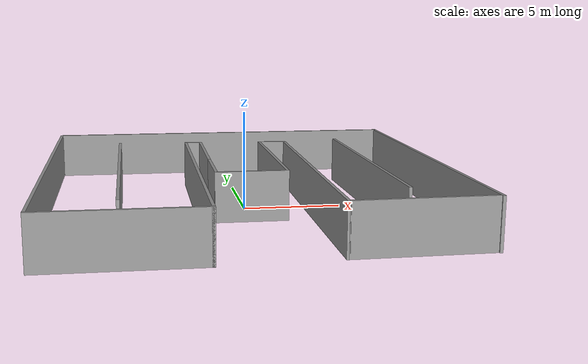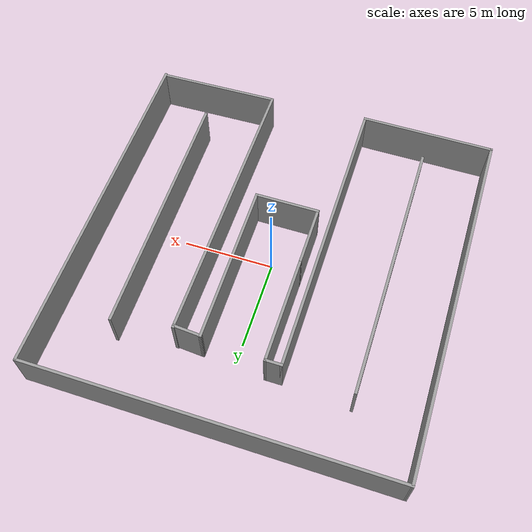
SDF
<?xml version='1.0'?>
<sdf version='1.7'>
  <model name='labirinto'>
    <pose>-0.019248 0.178923 0 0 -0 0</pose>
    <link name='Wall_1'>
      <collision name='Wall_1_Collision'>
        <geometry>
          <box>
            <size>3.5 0.15 2.5</size>
          </box>
        </geometry>
        <pose>0 0 1.25 0 -0 0</pose>
      </collision>
      <visual name='Wall_1_Visual'>
        <pose>0 0 1.25 0 -0 0</pose>
        <geometry>
          <box>
            <size>3.5 0.15 2.5</size>
          </box>
        </geometry>
        <material>
          <script>
            <uri>file://media/materials/scripts/gazebo.material</uri>
            <name>Gazebo/Grey</name>
          </script>
          <ambient>1 1 1 1</ambient>
        </material>
        <meta>
          <layer>0</layer>
        </meta>
      </visual>
      <pose>-1.71705 -1.19661 0 0 -0 -1.5708</pose>
    </link>
    <link name='Wall_10'>
      <collision name='Wall_10_Collision'>
        <geometry>
          <box>
            <size>7.5 0.15 2.5</size>
          </box>
        </geometry>
        <pose>0 0 1.25 0 -0 0</pose>
      </collision>
      <visual name='Wall_10_Visual'>
        <pose>0 0 1.25 0 -0 0</pose>
        <geometry>
          <box>
            <size>7.5 0.15 2.5</size>
          </box>
        </geometry>
        <material>
          <script>
            <uri>file://media/materials/scripts/gazebo.material</uri>
            <name>Gazebo/Grey</name>
          </script>
          <ambient>1 1 1 1</ambient>
        </material>
        <meta>
          <layer>0</layer>
        </meta>
      </visual>
      <pose>-6.21753 -9.92512 0 0 -0 0</pose>
    </link>
    <link name='Wall_11'>
      <collision name='Wall_11_Collision'>
        <geometry>
          <box>
            <size>16.25 0.15 2.5</size>
          </box>
        </geometry>
        <pose>0 0 1.25 0 -0 0</pose>
      </collision>
      <visual name='Wall_11_Visual'>
        <pose>0 0 1.25 0 -0 0</pose>
        <geometry>
          <box>
            <size>16.25 0.15 2.5</size>
          </box>
        </geometry>
        <material>
          <script>
            <uri>file://media/materials/scripts/gazebo.material</uri>
            <name>Gazebo/Grey</name>
          </script>
          <ambient>1 1 1 1</ambient>
        </material>
        <meta>
          <layer>0</layer>
        </meta>
      </visual>
      <pose>-2.54254 -1.87512 0 0 -0 1.5708</pose>
    </link>
    <link name='Wall_12'>
      <collision name='Wall_12_Collision'>
        <geometry>
          <box>
            <size>1 0.15 2.5</size>
          </box>
        </geometry>
        <pose>0 0 1.25 0 -0 0</pose>
      </collision>
      <visual name='Wall_12_Visual'>
        <pose>0 0 1.25 0 -0 0</pose>
        <geometry>
          <box>
            <size>1 0.15 2.5</size>
          </box>
        </geometry>
        <material>
          <script>
            <uri>file://media/materials/scripts/gazebo.material</uri>
            <name>Gazebo/Grey</name>
          </script>
          <ambient>1 1 1 1</ambient>
        </material>
        <meta>
          <layer>0</layer>
        </meta>
      </visual>
      <pose>-2.11754 6.17488 0 0 -0 0</pose>
    </link>
    <link name='Wall_13'>
      <collision name='Wall_13_Collision'>
        <geometry>
          <box>
            <size>5.90005 0.15 2.5</size>
          </box>
        </geometry>
        <pose>0 0 1.25 0 -0 0</pose>
      </collision>
      <visual name='Wall_13_Visual'>
        <pose>0 0 1.25 0 -0 0</pose>
        <geometry>
          <box>
            <size>5.90005 0.15 2.5</size>
          </box>
        </geometry>
        <material>
          <script>
            <uri>file://media/materials/scripts/gazebo.material</uri>
            <name>Gazebo/Grey</name>
          </script>
          <ambient>1 1 1 1</ambient>
        </material>
        <meta>
          <layer>0</layer>
        </meta>
      </visual>
      <pose>-1.70479 3.29988 0 0 -0 -1.57506</pose>
    </link>
    <link name='Wall_15'>
      <collision name='Wall_15_Collision'>
        <geometry>
          <box>
            <size>14 0.15 2.5</size>
          </box>
        </geometry>
        <pose>0 0 1.25 0 -0 0</pose>
      </collision>
      <visual name='Wall_15_Visual'>
        <pose>0 0 1.25 0 -0 0</pose>
        <geometry>
          <box>
            <size>14 0.15 2.5</size>
          </box>
        </geometry>
        <material>
          <script>
            <uri>file://media/materials/scripts/gazebo.material</uri>
            <name>Gazebo/Grey</name>
          </script>
          <ambient>1 1 1 1</ambient>
        </material>
        <meta>
          <layer>0</layer>
        </meta>
      </visual>
      <pose>6.3704 -0.502108 0 0 -0 1.5708</pose>
    </link>
    <link name='Wall_17'>
      <collision name='Wall_17_Collision'>
        <geometry>
          <box>
            <size>14.75 0.15 2.5</size>
          </box>
        </geometry>
        <pose>0 0 1.25 0 -0 0</pose>
      </collision>
      <visual name='Wall_17_Visual'>
        <pose>0 0 1.25 0 -0 0</pose>
        <geometry>
          <box>
            <size>14.75 0.15 2.5</size>
          </box>
        </geometry>
        <material>
          <script>
            <uri>file://media/materials/scripts/gazebo.material</uri>
            <name>Gazebo/Grey</name>
          </script>
          <ambient>1 1 1 1</ambient>
        </material>
        <meta>
          <layer>0</layer>
        </meta>
      </visual>
      <pose>-6.32342 -0.859443 0 0 -0 1.5708</pose>
    </link>
    <link name='Wall_2'>
      <collision name='Wall_2_Collision'>
        <geometry>
          <box>
            <size>3.62493 0.15 2.5</size>
          </box>
        </geometry>
        <pose>0 0 1.25 0 -0 0</pose>
      </collision>
      <visual name='Wall_2_Visual'>
        <pose>0 0 1.25 0 -0 0</pose>
        <geometry>
          <box>
            <size>3.62493 0.15 2.5</size>
          </box>
        </geometry>
        <material>
          <script>
            <uri>file://media/materials/scripts/gazebo.material</uri>
            <name>Gazebo/Grey</name>
          </script>
          <ambient>1 1 1 1</ambient>
        </material>
        <meta>
          <layer>0</layer>
        </meta>
      </visual>
      <pose>0.020206 -2.92512 0 0 -0 0</pose>
    </link>
    <link name='Wall_3'>
      <collision name='Wall_3_Collision'>
        <geometry>
          <box>
            <size>9 0.15 2.5</size>
          </box>
        </geometry>
        <pose>0 0 1.25 0 -0 0</pose>
      </collision>
      <visual name='Wall_3_Visual'>
        <pose>0 0 1.25 0 -0 0</pose>
        <geometry>
          <box>
            <size>9 0.15 2.5</size>
          </box>
        </geometry>
        <material>
          <script>
            <uri>file://media/materials/scripts/gazebo.material</uri>
            <name>Gazebo/Grey</name>
          </script>
          <ambient>1 1 1 1</ambient>
        </material>
        <meta>
          <layer>0</layer>
        </meta>
      </visual>
      <pose>1.75747 1.49988 0 0 -0 1.5708</pose>
    </link>
    <link name='Wall_4'>
      <collision name='Wall_4_Collision'>
        <geometry>
          <box>
            <size>1.61189 0.15 2.5</size>
          </box>
        </geometry>
        <pose>0 0 1.25 0 -0 0</pose>
      </collision>
      <visual name='Wall_4_Visual'>
        <pose>0 0 1.25 0 -0 0</pose>
        <geometry>
          <box>
            <size>1.61189 0.15 2.5</size>
          </box>
        </geometry>
        <material>
          <script>
            <uri>file://media/materials/scripts/gazebo.material</uri>
            <name>Gazebo/Grey</name>
          </script>
          <ambient>1 1 1 1</ambient>
        </material>
        <meta>
          <layer>0</layer>
        </meta>
      </visual>
      <pose>2.48645 5.87138 0 0 -0 -0.073262</pose>
    </link>
    <link name='Wall_5'>
      <collision name='Wall_5_Collision'>
        <geometry>
          <box>
            <size>15.6775 0.15 2.5</size>
          </box>
        </geometry>
        <pose>0 0 1.25 0 -0 0</pose>
      </collision>
      <visual name='Wall_5_Visual'>
        <pose>0 0 1.25 0 -0 0</pose>
        <geometry>
          <box>
            <size>15.6775 0.15 2.5</size>
          </box>
        </geometry>
        <material>
          <script>
            <uri>file://media/materials/scripts/gazebo.material</uri>
            <name>Gazebo/Grey</name>
          </script>
          <ambient>1 1 1 1</ambient>
        </material>
        <meta>
          <layer>0</layer>
        </meta>
      </visual>
      <pose>3.12186 -1.89183 0 0 -0 -1.58285</pose>
    </link>
    <link name='Wall_6'>
      <collision name='Wall_6_Collision'>
        <geometry>
          <box>
            <size>6.73451 0.15 2.5</size>
          </box>
        </geometry>
        <pose>0 0 1.25 0 -0 0</pose>
      </collision>
      <visual name='Wall_6_Visual'>
        <pose>0 0 1.25 0 -0 0</pose>
        <geometry>
          <box>
            <size>6.73451 0.15 2.5</size>
          </box>
        </geometry>
        <material>
          <script>
            <uri>file://media/materials/scripts/gazebo.material</uri>
            <name>Gazebo/Grey</name>
          </script>
          <ambient>1 1 1 1</ambient>
        </material>
        <meta>
          <layer>0</layer>
        </meta>
      </visual>
      <pose>6.41338 -9.58551 0 0 -0 0.02112</pose>
    </link>
    <link name='Wall_7'>
      <collision name='Wall_7_Collision'>
        <geometry>
          <box>
            <size>19.5302 0.15 2.5</size>
          </box>
        </geometry>
        <pose>0 0 1.25 0 -0 0</pose>
      </collision>
      <visual name='Wall_7_Visual'>
        <pose>0 0 1.25 0 -0 0</pose>
        <geometry>
          <box>
            <size>19.5302 0.15 2.5</size>
          </box>
        </geometry>
        <material>
          <script>
            <uri>file://media/materials/scripts/gazebo.material</uri>
            <name>Gazebo/Grey</name>
          </script>
          <ambient>1 1 1 1</ambient>
        </material>
        <meta>
          <layer>0</layer>
        </meta>
      </visual>
      <pose>9.79847 0.112159 0 0 -0 1.56114</pose>
    </link>
    <link name='Wall_8'>
      <collision name='Wall_8_Collision'>
        <geometry>
          <box>
            <size>19.9347 0.15 2.5</size>
          </box>
        </geometry>
        <pose>0 0 1.25 0 -0 0</pose>
      </collision>
      <visual name='Wall_8_Visual'>
        <pose>0 0 1.25 0 -0 0</pose>
        <geometry>
          <box>
            <size>19.9347 0.15 2.5</size>
          </box>
        </geometry>
        <material>
          <script>
            <uri>file://media/materials/scripts/gazebo.material</uri>
            <name>Gazebo/Grey</name>
          </script>
          <ambient>1 1 1 1</ambient>
        </material>
        <meta>
          <layer>0</layer>
        </meta>
      </visual>
      <pose>-0.000244 9.89412 0 0 -0 3.13848</pose>
    </link>
    <link name='Wall_9'>
      <collision name='Wall_9_Collision'>
        <geometry>
          <box>
            <size>20 0.15 2.5</size>
          </box>
        </geometry>
        <pose>0 0 1.25 0 -0 0</pose>
      </collision>
      <visual name='Wall_9_Visual'>
        <pose>0 0 1.25 0 -0 0</pose>
        <geometry>
          <box>
            <size>20 0.15 2.5</size>
          </box>
        </geometry>
        <material>
          <script>
            <uri>file://media/materials/scripts/gazebo.material</uri>
            <name>Gazebo/Grey</name>
          </script>
          <ambient>1 1 1 1</ambient>
        </material>
        <meta>
          <layer>0</layer>
        </meta>
      </visual>
      <pose>-9.89254 -0.000116 0 0 -0 -1.5708</pose>
    </link>
    <static>1</static>
  </model>
</sdf>
